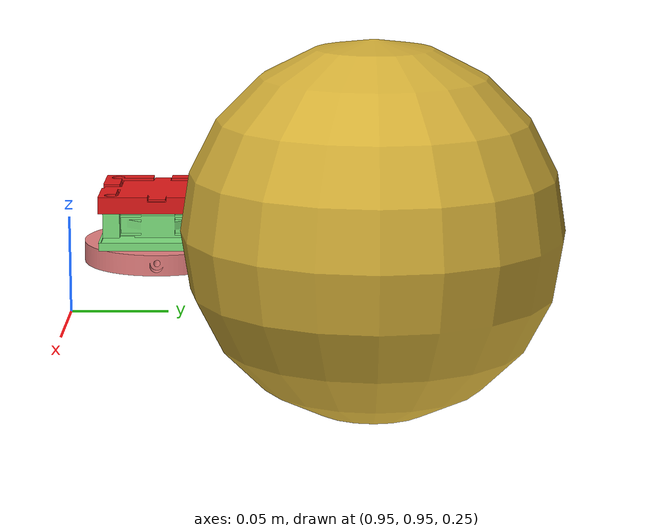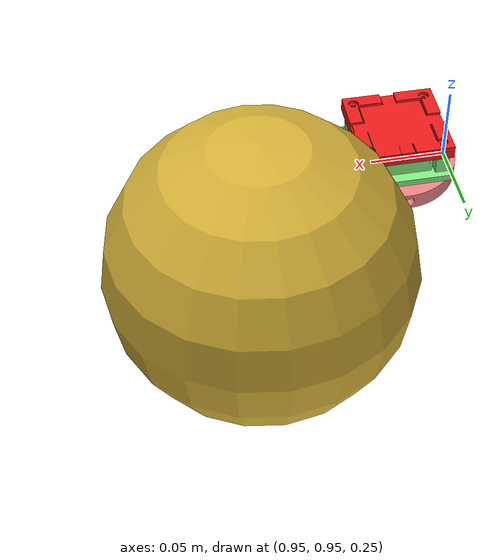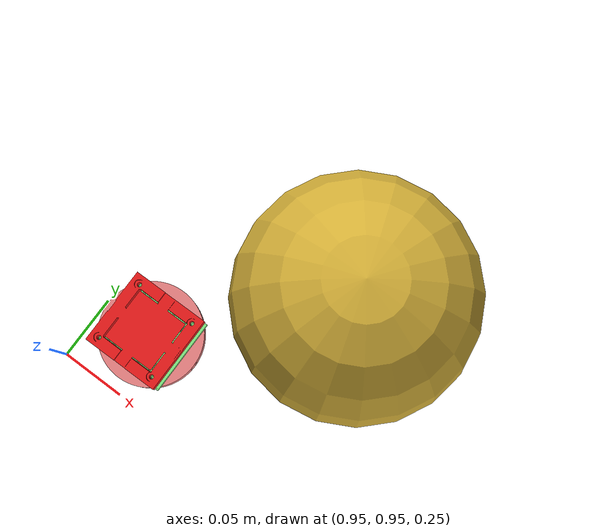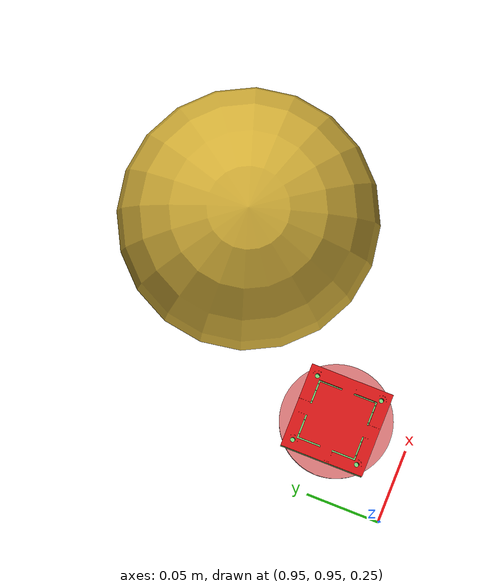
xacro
<?xml version="1.0" ?>
<robot
       xmlns:xacro="http://www.ros.org/wiki/xacro"
       name="block_ft_demo">

  <!-- basic Gazebo demo of the block_ft sensor.  -->

  <xacro:include filename="$(find tams_printed_ft)/urdf/ft_payload.xacro" />
  <xacro:include filename="$(find tams_printed_ft)/urdf/ft_sensor.xacro" />

  <xacro:include filename="$(find tams_printed_ft)/urdf/block_ft.xacro" />

  <link name="world" />

  <xacro:ft_control_plugin name="block_ft" />

  <xacro:ft_sensor_plugin
     name="block_ft"
     joint="sensor_joint"
     rate="200"
     topic="wrench" >
  </xacro:ft_sensor_plugin>

  <xacro:block_ft name="block_ft" />

  <xacro:block_ft_m3207_adapter  name="block_ft_m3207_adapter_plate" />

  <joint name="world_block_ft_m3207_adapter_joint" type="fixed">
    <parent link="world" />
    <child link="block_ft_m3207_adapter_plate" />
    <origin xyz="1 1 ${0.3-0.01}" rpy="0 0 0" />
  </joint>

  <joint name="world_block_ft_joint" type="fixed">
    <parent link="world" />
    <child link="block_ft" />
    <origin xyz="1 1 0.3" rpy="0 0 0" />
  </joint>

  <!-- single payload for testing -->

  <xacro:ft_payload_sphere  name="m11kg" mass="1.100" diameter="0.17">
    <cog_origin xyz="0 0 0" rpy="0 0 0"/>
  </xacro:ft_payload_sphere>

  <joint name="block_ft_payload_joint" type="fixed">
    <parent link="block_ft_tool_mount" />
    <child link="m11kg" />
    <origin xyz="0.1 0.1 0" rpy="0 0 0" />
  </joint>

</robot>

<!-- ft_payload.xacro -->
<robot
       xmlns:xacro="http://www.ros.org/wiki/xacro"
       name="ft_paylaod">

<!-- configurable payload for static force/torque tests -->

<xacro:macro name="ft_payload_sphere" params="name mass *cog_origin diameter">
  <link name="${name}">
    <inertial>
      <xacro:insert_block name="cog_origin" />
      <mass value="${mass}" />
      <inertia  ixx="0.001" ixy="0" ixz="0" iyy="0.001" iyz="0" izz="0.001" />
    </inertial>
    <visual>
      <xacro:insert_block name="cog_origin" />
      <material name="ft_payload_gold" > 212,175,55
        <color rgba="${212/255} ${175/255} ${55/255} 1.0" />
      </material>
      <geometry>
         <sphere radius="${diameter/2}" />
      </geometry>
    </visual>
    <collision>
      <xacro:insert_block name="cog_origin" />
      <geometry>
         <sphere radius="${diameter/2}" />
      </geometry>
    </collision>
  </link>

  <gazebo reference="${name}">
      <material>Gazebo/Gold</material>
      <turnGravityOff>false</turnGravityOff>
      <selfCollide>false</selfCollide>
      <!-- kp: stiffness kd: damping mu1, mu2: friction -->
      <mu1>100.0</mu1>
      <mu2>100.0</mu2>
      <kp>1000000.0</kp>
      <kd>1.0</kd>
  </gazebo>
</xacro:macro>

</robot>

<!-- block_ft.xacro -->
<robot
       xmlns:xacro="http://www.ros.org/wiki/xacro"
       name="block_ft">

<xacro:macro name="block_ft" params="name" >

  <link name="${name}">
    <inertial>
      <origin xyz="0 0 ${0.009}" />
      <mass value="0.15" />
      <inertia  ixx="0.0002" ixy="0" ixz="0" iyy="0.0002" iyz="0" izz="0.0002" />
      </inertial>
      <visual>
        <origin xyz="0 0 0" />
        <material name="green_pla_filament" >
          <color rgba="0.5 0.9 0.5 1.0" />
        </material>
        <geometry>
          <mesh filename="package://tams_printed_ft/meshes/block_ft_base_and_elastic.dae" scale="0.001 0.001 0.001" />
        </geometry>
      </visual>
      <collision>
        <!-- 2mm shorter to provide visual gap between base and tool parts -->
        <origin xyz="0 0 ${0.008}" />
        <geometry>
          <box size="0.056 0.056 0.016" />
        </geometry>
    </collision>
  </link>

  <gazebo reference="${name}">
      <material>Gazebo/Green</material>
      <turnGravityOff>false</turnGravityOff>
      <selfCollide>false</selfCollide>
      <!-- kp: stiffness kd: damping mu1, mu2: friction -->
      <mu1>100.0</mu1>
      <mu2>100.0</mu2>
      <kp>1000000.0</kp>
      <kd>1.0</kd>
  </gazebo>

  <link name="${name}_tool_plate">
    <inertial>
      <origin xyz="1 0 ${0.008/2}" />
      <mass value="0.05" />
      <inertia  ixx="0.00001" ixy="0" ixz="0" iyy="0.00001" iyz="0" izz="0.00002" />
    </inertial>
    <visual>
        <origin xyz="0 0 -0.018" /> <!-- compensate mesh z-offset -->
        <material name="red_pla_filament" >
          <color rgba="0.9 0.1 0.1 1.0" />
        </material>
        <geometry>
          <mesh filename="package://tams_printed_ft/meshes/block_ft_cover_ring_and_pattern_plate.dae" scale="0.001 0.001 0.001" />
        </geometry>
      </visual>
      <collision>
        <origin xyz="0 0 ${0.008/2}" />
        <geometry>
          <box size="0.056 0.056 0.008" />
        </geometry>
      </collision>
  </link>

  <gazebo reference="${name}_tool_plate">
      <material>Gazebo/Red</material>
      <turnGravityOff>false</turnGravityOff>
      <selfCollide>false</selfCollide>
      <!-- kp: stiffness kd: damping mu1, mu2: friction -->
      <mu1>100.0</mu1>
      <mu2>100.0</mu2>
      <kp>1000000.0</kp>
      <kd>1.0</kd>
  </gazebo>

  <!-- type=floating, no axis required -->
  <joint name="${name}_sensor_joint" type="revolute">
    <parent link="${name}" />
    <child link="${name}_tool_plate" />
    <origin xyz="0 0 ${0.018}" rpy="0 0 0" />

    <axis xyz="1 0 0" rpy="0 0 0" />
    <dynamics damping="1.01" friction="0.05" />
    <limit lower="-0.02" upper="0.02" effort="100" velocity="1" />
    <safety_controller soft_lower_limit="-0.001" soft_upper_limit="0.001" k_position="1" k_velocity="1" />
  </joint>

  <transmission name="${name}_sensor_joint_transmission">
    <type>transmission_interface/SimpleTransmission</type>
    <joint name="${name}_sensor_joint">
      <hardwareInterface>hardware_interface/EffortJointInterface</hardwareInterface>
    </joint>
    <actuator name="${name}_sensor_joint_motor">
      <hardwareInterface>hardware_interface/EffortJointInterface</hardwareInterface>
      <mechanicalReduction>1</mechanicalReduction>
    </actuator>
  </transmission>

  <link name="${name}_tool_mount" />

  <joint name="${name}_tool_mount_joint" type="fixed">
    <parent link="${name}_tool_plate" />
    <child link="${name}_tool_mount" />
    <origin xyz="0 0 ${0.008}" rpy="0 0 0" />
  </joint>

</xacro:macro>

<!-- model of the d=74 h=10 two-part inner/outer adapter plate for the Sunrise M3207 sensor -->
<xacro:macro name="block_ft_m3207_adapter" params="name" >

  <link name="${name}">
    <inertial>
      <origin xyz="0 0 0.005" />
      <mass value="0.10" />
      <inertia  ixx="0.0001" ixy="0" ixz="0" iyy="0.0001" iyz="0" izz="0.0002" />
      </inertial>
      <visual>
        <origin xyz="0 0 0.01" /> <!-- mesh origin is at the top -->
        <material name="red_pla_filament" >
          <color rgba="0.9 0.5 0.5 1.0" />
        </material>
        <geometry>
          <mesh filename="package://tams_printed_ft/meshes/block_ft_sunrise_mounting_plate_74x10.dae" scale="0.001 0.001 0.001" />
        </geometry>
      </visual>
      <collision>
        <!-- 2mm shorter to provide visual gap between base and tool parts -->
        <origin xyz="0 0 0.005" />
        <geometry>
          <cylinder radius="${0.074/2}" length="0.01" />
        </geometry>
    </collision>
  </link>

  <gazebo reference="${name}">
      <material>Gazebo/Gray</material>
      <turnGravityOff>false</turnGravityOff>
      <selfCollide>false</selfCollide>
      <!-- kp: stiffness kd: damping mu1, mu2: friction -->
      <mu1>100.0</mu1>
      <mu2>100.0</mu2>
      <kp>1000000.0</kp>
      <kd>1.0</kd>
  </gazebo>

</xacro:macro>

</robot>
